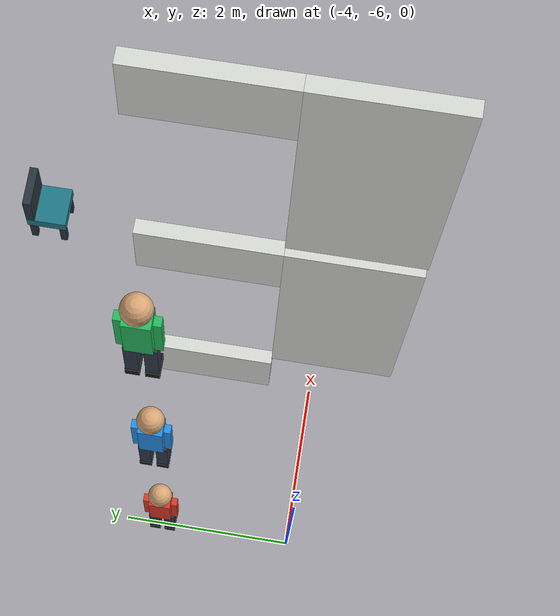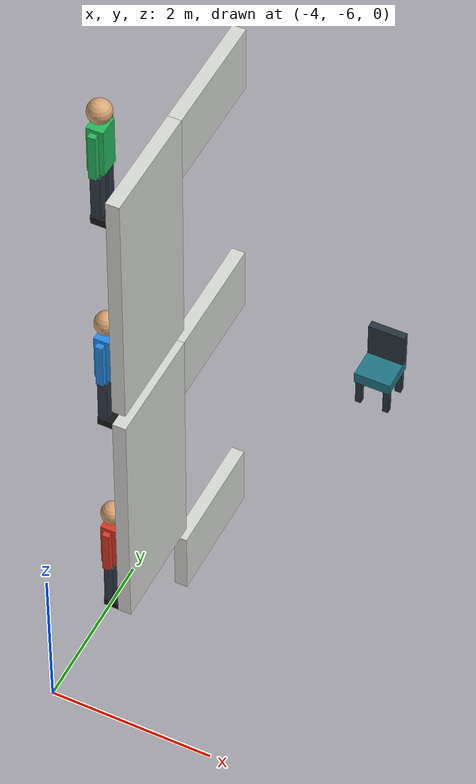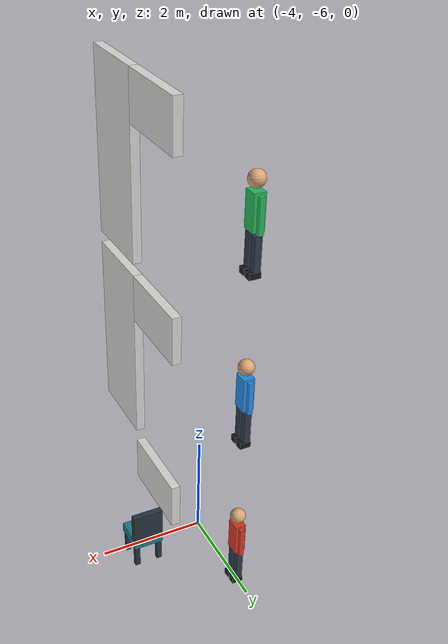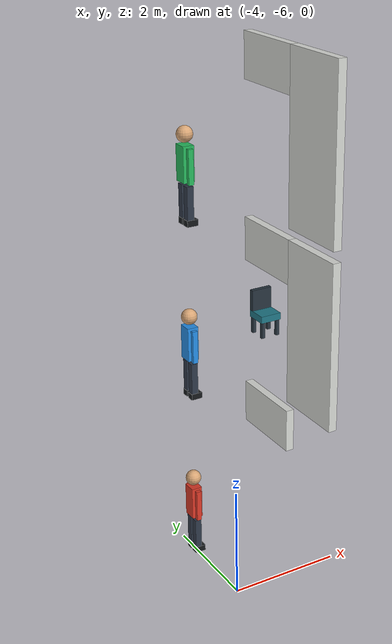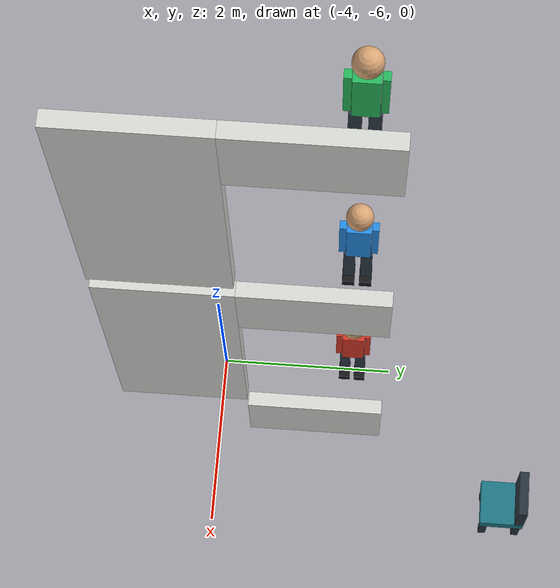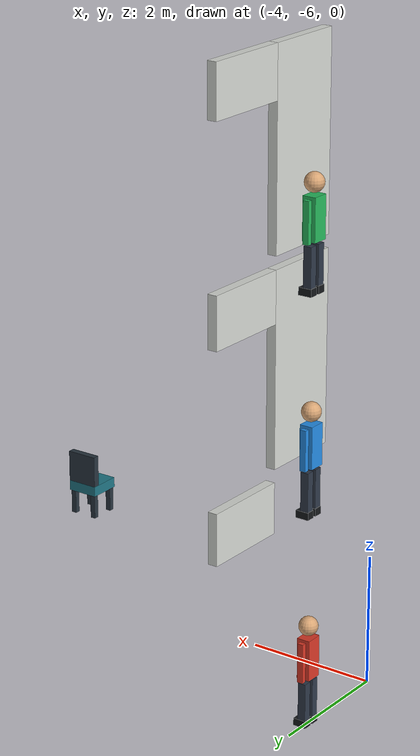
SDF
<sdf version="1.6">
 <world name="three_floor">
  <model name="f1_lintel_shared_west">
   <static>true</static>
   <pose>-2.6 -4.8 2.6 0 0 0</pose>
   <link name="f1_lintel_shared_west_link">
    <collision name="f1_lintel_shared_west_collision">
     <geometry><box><size>0.15 1.4 0.8</size></box></geometry>
    </collision>
    <visual name="f1_lintel_shared_west_visual">
     <geometry><box><size>0.15 1.4 0.8</size></box></geometry>
     <material><ambient>.84 .85 .83 1</ambient><diffuse>.84 .85 .83 1</diffuse></material>
    </visual>
   </link>
  </model>
  <model name="f2_wall_014">
   <static>true</static>
   <pose>-2.6 -6.15 4.7 0 0 0</pose>
   <link name="f2_wall_014_link">
    <collision name="f2_wall_014_collision"><geometry><box><size>0.15 1.3 3</size></box></geometry></collision>
    <visual name="f2_wall_014_visual">
     <geometry><box><size>0.15 1.3 3</size></box></geometry>
     <material><ambient>.84 .85 .83 1</ambient><diffuse>.84 .85 .83 1</diffuse></material>
    </visual>
   </link>
  </model>
  <model name="f2_lintel_shared_west">
   <static>true</static>
   <pose>-2.6 -4.8 5.8 0 0 0</pose>
   <link name="f2_lintel_shared_west_link">
    <collision name="f2_lintel_shared_west_collision">
     <geometry><box><size>0.15 1.4 0.8</size></box></geometry>
    </collision>
    <visual name="f2_lintel_shared_west_visual">
     <geometry><box><size>0.15 1.4 0.8</size></box></geometry>
     <material><ambient>.84 .85 .83 1</ambient><diffuse>.84 .85 .83 1</diffuse></material>
    </visual>
   </link>
  </model>
  <model name="f3_wall_014">
   <static>true</static>
   <pose>-2.6 -6.15 7.9 0 0 0</pose>
   <link name="f3_wall_014_link">
    <collision name="f3_wall_014_collision"><geometry><box><size>0.15 1.3 3</size></box></geometry></collision>
    <visual name="f3_wall_014_visual">
     <geometry><box><size>0.15 1.3 3</size></box></geometry>
     <material><ambient>.84 .85 .83 1</ambient><diffuse>.84 .85 .83 1</diffuse></material>
    </visual>
   </link>
  </model>
  <model name="f3_lintel_shared_west">
   <static>true</static>
   <pose>-2.6 -4.8 9 0 0 0</pose>
   <link name="f3_lintel_shared_west_link">
    <collision name="f3_lintel_shared_west_collision">
     <geometry><box><size>0.15 1.4 0.8</size></box></geometry>
    </collision>
    <visual name="f3_lintel_shared_west_visual">
     <geometry><box><size>0.15 1.4 0.8</size></box></geometry>
     <material><ambient>.84 .85 .83 1</ambient><diffuse>.84 .85 .83 1</diffuse></material>
    </visual>
   </link>
  </model>
  <model name="f2_s2_furniture_24_seat">
   <static>true</static>
   <pose>-1.48 -2.85 3.2 0 0 0</pose>
   <link name="f2_s2_furniture_24_seat_link">
    <collision name="f2_s2_furniture_24_seat_link_seat_collision">
     <pose>0 0 0.4 0 0 0</pose>
     <geometry><box><size>0.43 0.43 0.14</size></box></geometry>
    </collision>
    <visual name="f2_s2_furniture_24_seat_link_seat_visual">
     <pose>0 0 0.4 0 0 0</pose>
     <geometry><box><size>0.43 0.43 0.14</size></box></geometry>
     <material><ambient>0.12 0.46 0.52 1</ambient><diffuse>0.12 0.46 0.52 1</diffuse></material>
    </visual>
    <collision name="f2_s2_furniture_24_seat_link_back_collision">
     <pose>0 0.17 0.685 0 0 0</pose>
     <geometry><box><size>0.43 0.09 0.43</size></box></geometry>
    </collision>
    <visual name="f2_s2_furniture_24_seat_link_back_visual">
     <pose>0 0.17 0.685 0 0 0</pose>
     <geometry><box><size>0.43 0.09 0.43</size></box></geometry>
     <material><ambient>0.15 0.2 0.24 1</ambient><diffuse>0.15 0.2 0.24 1</diffuse></material>
    </visual>
    <collision name="f2_s2_furniture_24_seat_link_leg_-0.16499999999999998_-0.16499999999999998_collision">
     <pose>-0.165 -0.165 0.165 0 0 0</pose>
     <geometry><box><size>0.07 0.07 0.33</size></box></geometry>
    </collision>
    <visual name="f2_s2_furniture_24_seat_link_leg_-0.16499999999999998_-0.16499999999999998_visual">
     <pose>-0.165 -0.165 0.165 0 0 0</pose>
     <geometry><box><size>0.07 0.07 0.33</size></box></geometry>
     <material><ambient>0.15 0.2 0.24 1</ambient><diffuse>0.15 0.2 0.24 1</diffuse></material>
    </visual>
    <collision name="f2_s2_furniture_24_seat_link_leg_-0.16499999999999998_0.16499999999999998_collision">
     <pose>-0.165 0.165 0.165 0 0 0</pose>
     <geometry><box><size>0.07 0.07 0.33</size></box></geometry>
    </collision>
    <visual name="f2_s2_furniture_24_seat_link_leg_-0.16499999999999998_0.16499999999999998_visual">
     <pose>-0.165 0.165 0.165 0 0 0</pose>
     <geometry><box><size>0.07 0.07 0.33</size></box></geometry>
     <material><ambient>0.15 0.2 0.24 1</ambient><diffuse>0.15 0.2 0.24 1</diffuse></material>
    </visual>
    <collision name="f2_s2_furniture_24_seat_link_leg_0.16499999999999998_-0.16499999999999998_collision">
     <pose>0.165 -0.165 0.165 0 0 0</pose>
     <geometry><box><size>0.07 0.07 0.33</size></box></geometry>
    </collision>
    <visual name="f2_s2_furniture_24_seat_link_leg_0.16499999999999998_-0.16499999999999998_visual">
     <pose>0.165 -0.165 0.165 0 0 0</pose>
     <geometry><box><size>0.07 0.07 0.33</size></box></geometry>
     <material><ambient>0.15 0.2 0.24 1</ambient><diffuse>0.15 0.2 0.24 1</diffuse></material>
    </visual>
    <collision name="f2_s2_furniture_24_seat_link_leg_0.16499999999999998_0.16499999999999998_collision">
     <pose>0.165 0.165 0.165 0 0 0</pose>
     <geometry><box><size>0.07 0.07 0.33</size></box></geometry>
    </collision>
    <visual name="f2_s2_furniture_24_seat_link_leg_0.16499999999999998_0.16499999999999998_visual">
     <pose>0.165 0.165 0.165 0 0 0</pose>
     <geometry><box><size>0.07 0.07 0.33</size></box></geometry>
     <material><ambient>0.15 0.2 0.24 1</ambient><diffuse>0.15 0.2 0.24 1</diffuse></material>
    </visual>
   </link>
  </model>
  <model name="f1_pedestrian">
   <static>true</static>
   <pose>-4 -4.45 0.0 0 0 0</pose>
   <link name="f1_pedestrian_link">
    <collision name="pedestrian_solid">
     <pose>0 0 0.85 0 0 0</pose>
     <geometry><box><size>.36 .42 1.7</size></box></geometry>
    </collision>
    <visual name="head">
     <pose>0 0 1.53 0 0 0</pose>
     <geometry><sphere><radius>0.14</radius></sphere></geometry>
     <material><ambient>0.85 0.65 0.46 1</ambient><diffuse>0.85 0.65 0.46 1</diffuse></material>
    </visual>
    <visual name="torso">
     <pose>0 0 1.05 0 0 0</pose>
     <geometry><box><size>0.2 0.25 0.62</size></box></geometry>
     <material><ambient>0.85 0.22 0.15 1</ambient><diffuse>0.85 0.22 0.15 1</diffuse></material>
    </visual>
    <visual name="arm-1">
     <pose>0 -0.165 1.02 0 0 0</pose>
     <geometry><box><size>0.09 0.07 0.6</size></box></geometry>
     <material><ambient>0.85 0.22 0.15 1</ambient><diffuse>0.85 0.22 0.15 1</diffuse></material>
    </visual>
    <visual name="leg-1">
     <pose>0 -0.09 0.36 0 0 0</pose>
     <geometry><box><size>0.12 0.12 0.65</size></box></geometry>
     <material><ambient>0.18 0.22 0.28 1</ambient><diffuse>0.18 0.22 0.28 1</diffuse></material>
    </visual>
    <visual name="shoe-1">
     <pose>0.03 -0.09 0.055 0 0 0</pose>
     <geometry><box><size>0.2 0.13 0.11</size></box></geometry>
     <material><ambient>0.08 0.09 0.1 1</ambient><diffuse>0.08 0.09 0.1 1</diffuse></material>
    </visual>
    <visual name="arm1">
     <pose>0 0.165 1.02 0 0 0</pose>
     <geometry><box><size>0.09 0.07 0.6</size></box></geometry>
     <material><ambient>0.85 0.22 0.15 1</ambient><diffuse>0.85 0.22 0.15 1</diffuse></material>
    </visual>
    <visual name="leg1">
     <pose>0 0.09 0.36 0 0 0</pose>
     <geometry><box><size>0.12 0.12 0.65</size></box></geometry>
     <material><ambient>0.18 0.22 0.28 1</ambient><diffuse>0.18 0.22 0.28 1</diffuse></material>
    </visual>
    <visual name="shoe1">
     <pose>0.03 0.09 0.055 0 0 0</pose>
     <geometry><box><size>0.2 0.13 0.11</size></box></geometry>
     <material><ambient>0.08 0.09 0.1 1</ambient><diffuse>0.08 0.09 0.1 1</diffuse></material>
    </visual>
   </link>
   <plugin name="pedestrian_patrol" filename="libscene_controller.so">
    <speed>0.8</speed>
    <start_delay>5.0</start_delay>
    <initial_direction>forward</initial_direction>
    <waypoint><position>-4 -4.45 0.0</position><pause>8</pause></waypoint>
    <waypoint><position>4 -4.45 0.0</position><pause>8</pause></waypoint>
   </plugin>
  </model>
  <model name="f2_pedestrian">
   <static>true</static>
   <pose>-4 -4.45 3.2 0 0 0</pose>
   <link name="f2_pedestrian_link">
    <collision name="pedestrian_solid">
     <pose>0 0 0.85 0 0 0</pose>
     <geometry><box><size>.36 .42 1.7</size></box></geometry>
    </collision>
    <visual name="head">
     <pose>0 0 1.53 0 0 0</pose>
     <geometry><sphere><radius>0.14</radius></sphere></geometry>
     <material><ambient>0.85 0.65 0.46 1</ambient><diffuse>0.85 0.65 0.46 1</diffuse></material>
    </visual>
    <visual name="torso">
     <pose>0 0 1.05 0 0 0</pose>
     <geometry><box><size>0.2 0.25 0.62</size></box></geometry>
     <material><ambient>0.14 0.55 0.9 1</ambient><diffuse>0.14 0.55 0.9 1</diffuse></material>
    </visual>
    <visual name="arm-1">
     <pose>0 -0.165 1.02 0 0 0</pose>
     <geometry><box><size>0.09 0.07 0.6</size></box></geometry>
     <material><ambient>0.14 0.55 0.9 1</ambient><diffuse>0.14 0.55 0.9 1</diffuse></material>
    </visual>
    <visual name="leg-1">
     <pose>0 -0.09 0.36 0 0 0</pose>
     <geometry><box><size>0.12 0.12 0.65</size></box></geometry>
     <material><ambient>0.18 0.22 0.28 1</ambient><diffuse>0.18 0.22 0.28 1</diffuse></material>
    </visual>
    <visual name="shoe-1">
     <pose>0.03 -0.09 0.055 0 0 0</pose>
     <geometry><box><size>0.2 0.13 0.11</size></box></geometry>
     <material><ambient>0.08 0.09 0.1 1</ambient><diffuse>0.08 0.09 0.1 1</diffuse></material>
    </visual>
    <visual name="arm1">
     <pose>0 0.165 1.02 0 0 0</pose>
     <geometry><box><size>0.09 0.07 0.6</size></box></geometry>
     <material><ambient>0.14 0.55 0.9 1</ambient><diffuse>0.14 0.55 0.9 1</diffuse></material>
    </visual>
    <visual name="leg1">
     <pose>0 0.09 0.36 0 0 0</pose>
     <geometry><box><size>0.12 0.12 0.65</size></box></geometry>
     <material><ambient>0.18 0.22 0.28 1</ambient><diffuse>0.18 0.22 0.28 1</diffuse></material>
    </visual>
    <visual name="shoe1">
     <pose>0.03 0.09 0.055 0 0 0</pose>
     <geometry><box><size>0.2 0.13 0.11</size></box></geometry>
     <material><ambient>0.08 0.09 0.1 1</ambient><diffuse>0.08 0.09 0.1 1</diffuse></material>
    </visual>
   </link>
   <plugin name="pedestrian_patrol" filename="libscene_controller.so">
    <speed>0.65</speed>
    <start_delay>6.0</start_delay>
    <initial_direction>forward</initial_direction>
    <waypoint><position>-4 -4.45 3.2</position><pause>8</pause></waypoint>
    <waypoint><position>4 -4.45 3.2</position><pause>8</pause></waypoint>
   </plugin>
  </model>
  <model name="f3_pedestrian">
   <static>true</static>
   <pose>-4 -4.45 6.4 0 0 0</pose>
   <link name="f3_pedestrian_link">
    <collision name="pedestrian_solid">
     <pose>0 0 0.85 0 0 0</pose>
     <geometry><box><size>.36 .42 1.7</size></box></geometry>
    </collision>
    <visual name="head">
     <pose>0 0 1.53 0 0 0</pose>
     <geometry><sphere><radius>0.14</radius></sphere></geometry>
     <material><ambient>0.85 0.65 0.46 1</ambient><diffuse>0.85 0.65 0.46 1</diffuse></material>
    </visual>
    <visual name="torso">
     <pose>0 0 1.05 0 0 0</pose>
     <geometry><box><size>0.2 0.25 0.62</size></box></geometry>
     <material><ambient>0.15 0.72 0.36 1</ambient><diffuse>0.15 0.72 0.36 1</diffuse></material>
    </visual>
    <visual name="arm-1">
     <pose>0 -0.165 1.02 0 0 0</pose>
     <geometry><box><size>0.09 0.07 0.6</size></box></geometry>
     <material><ambient>0.15 0.72 0.36 1</ambient><diffuse>0.15 0.72 0.36 1</diffuse></material>
    </visual>
    <visual name="leg-1">
     <pose>0 -0.09 0.36 0 0 0</pose>
     <geometry><box><size>0.12 0.12 0.65</size></box></geometry>
     <material><ambient>0.18 0.22 0.28 1</ambient><diffuse>0.18 0.22 0.28 1</diffuse></material>
    </visual>
    <visual name="shoe-1">
     <pose>0.03 -0.09 0.055 0 0 0</pose>
     <geometry><box><size>0.2 0.13 0.11</size></box></geometry>
     <material><ambient>0.08 0.09 0.1 1</ambient><diffuse>0.08 0.09 0.1 1</diffuse></material>
    </visual>
    <visual name="arm1">
     <pose>0 0.165 1.02 0 0 0</pose>
     <geometry><box><size>0.09 0.07 0.6</size></box></geometry>
     <material><ambient>0.15 0.72 0.36 1</ambient><diffuse>0.15 0.72 0.36 1</diffuse></material>
    </visual>
    <visual name="leg1">
     <pose>0 0.09 0.36 0 0 0</pose>
     <geometry><box><size>0.12 0.12 0.65</size></box></geometry>
     <material><ambient>0.18 0.22 0.28 1</ambient><diffuse>0.18 0.22 0.28 1</diffuse></material>
    </visual>
    <visual name="shoe1">
     <pose>0.03 0.09 0.055 0 0 0</pose>
     <geometry><box><size>0.2 0.13 0.11</size></box></geometry>
     <material><ambient>0.08 0.09 0.1 1</ambient><diffuse>0.08 0.09 0.1 1</diffuse></material>
    </visual>
   </link>
   <plugin name="pedestrian_patrol" filename="libscene_controller.so">
    <speed>0.7</speed>
    <start_delay>7.0</start_delay>
    <initial_direction>forward</initial_direction>
    <waypoint><position>-4 -4.45 6.4</position><pause>8</pause></waypoint>
    <waypoint><position>4 -4.45 6.4</position><pause>8</pause></waypoint>
   </plugin>
  </model>
 </world>
</sdf>
